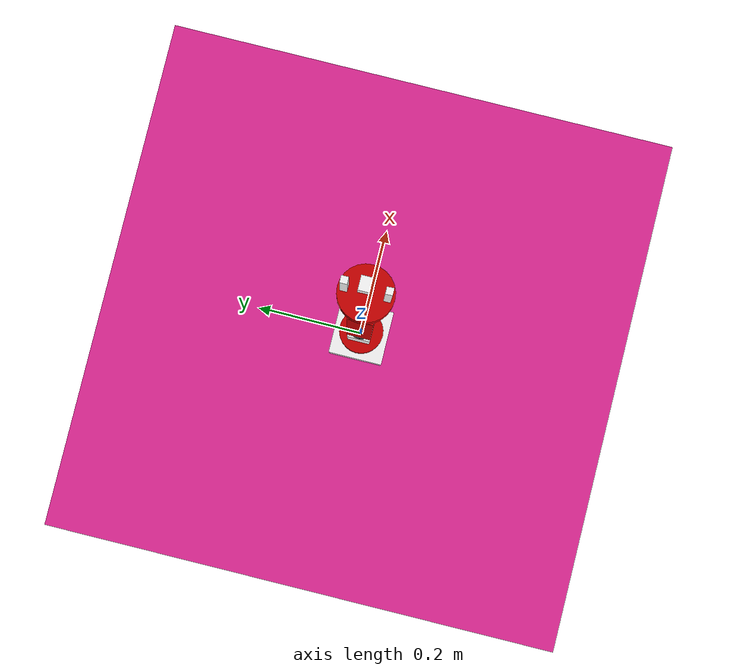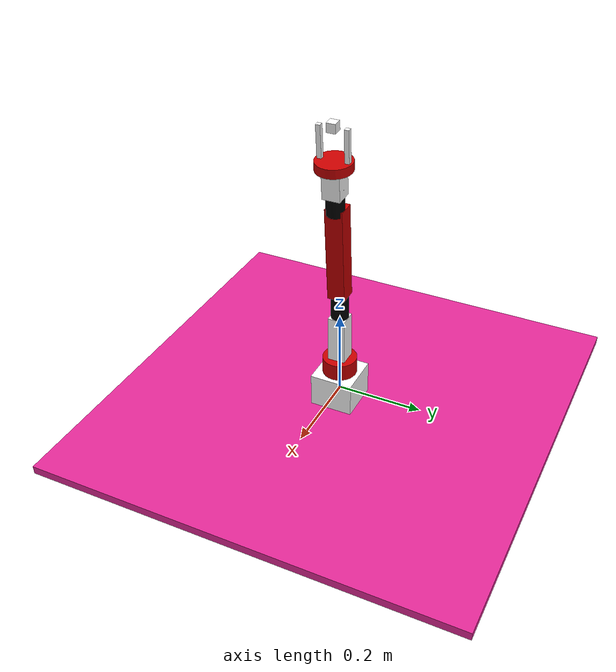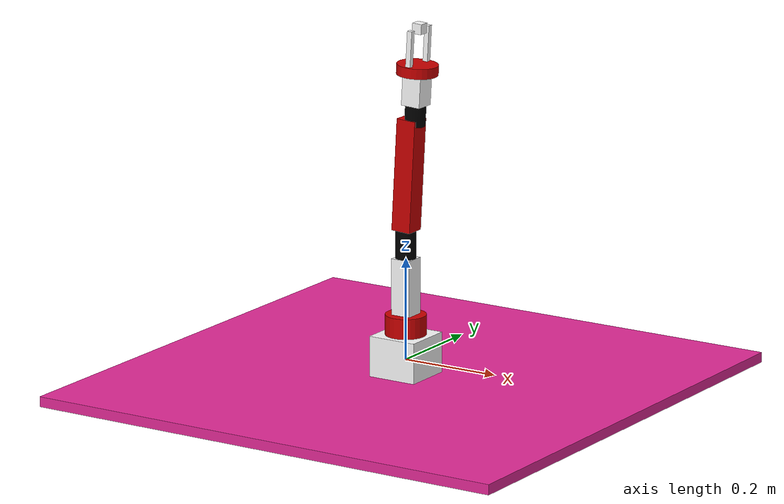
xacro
<?xml version="1.0"?>

<robot name="seven_dof_arm" xmlns:xacro="http://ros.org/wiki/xacro">

    <!-- Include materials -->

    <material name="Black">
        <color rgba="0.0 0.0 0.0 1.0" />
    </material>

    <material name="Red">
        <color rgba="0.8 0.0 0.0 1.0" />
    </material>

    <material name="White">
        <color rgba="1.0 1.0 1.0 1.0" />
    </material>

    <material name="Brown">
        <color rgba="0.9 0.16 0.6 1.0" />
    </material>

    <xacro:property name="deg_to_rad" value="0.01745329251994329577" />

    <!-- Constants -->
    <xacro:property name="M_SCALE" value="0.001 0.001 0.001" />
    <xacro:property name="M_PI" value="3.14159" />

    <!-- Shoulder pan link properties -->
    <xacro:property name="shoulder_pan_width" value="0.04" />
    <xacro:property name="shoulder_pan_len" value="0.08" />

    <!-- Shoulder pitch link properties -->
    <xacro:property name="shoulder_pitch_len" value="0.14" />
    <xacro:property name="shoulder_pitch_width" value="0.04" />
    <xacro:property name="shoulder_pitch_height" value="0.04" />

    <!-- Elbow roll link properties -->
    <xacro:property name="elbow_roll_width" value="0.02" />
    <xacro:property name="elbow_roll_len" value="0.06" />

    <!-- Elbow pitch link properties -->
    <xacro:property name="elbow_pitch_len" value="0.22" />
    <xacro:property name="elbow_pitch_width" value="0.04" />
    <xacro:property name="elbow_pitch_height" value="0.04" />

    <!-- Wrist roll link properties -->
    <xacro:property name="wrist_roll_width" value="0.02" />
    <xacro:property name="wrist_roll_len" value="0.04" />

    <!-- wrist pitch link properties -->
    <xacro:property name="wrist_pitch_len" value="0.06" />
    <xacro:property name="wrist_pitch_width" value="0.04" />
    <xacro:property name="wrist_pitch_height" value="0.04" />

    <!-- Gripper roll link properties -->
    <xacro:property name="gripper_roll_width" value="0.04" />
    <xacro:property name="gripper_roll_len" value="0.02" />

    <!-- Left gripper -->
    <xacro:property name="left_gripper_len" value="0.08" />
    <xacro:property name="left_gripper_width" value="0.01" />
    <xacro:property name="left_gripper_height" value="0.01" />

    <!-- Right gripper -->
    <xacro:property name="right_gripper_len" value="0.08" />
    <xacro:property name="right_gripper_width" value="0.01" />
    <xacro:property name="right_gripper_height" value="0.01" />

    <!-- Right gripper -->
    <xacro:property name="grasp_frame_len" value="0.02" />
    <xacro:property name="grasp_frame_width" value="0.02" />
    <xacro:property name="grasp_frame_height" value="0.02" />

    <xacro:macro name="inertial_matrix" params="mass">
        <inertial>
            <mass value="${mass}" />
            <inertia ixx="1.0" ixy="0.0" ixz="0.0" iyy="0.5" iyz="0.0" izz="1.0" />
        </inertial>
    </xacro:macro>

    <xacro:macro name="transmission_block" params="joint_name">
        <transmission name="tran1">
            <type>transmission_interface/SimpleTransmission</type>
            <joint name="${joint_name}">
                <hardwareInterface>hardware_interface/PositionJointInterface</hardwareInterface>
            </joint>
            <actuator name="motor1">
                <hardwareInterface>hardware_interface/PositionJointInterface</hardwareInterface>
                <mechanicalReduction>1</mechanicalReduction>
            </actuator>
        </transmission>
    </xacro:macro>

    <!-- BOTTOM FIXED LINK
This link is the base of the arm in which arm is placed

-->

    <joint name="bottom_joint" type="fixed">
        <origin xyz="0 0 0" rpy="0 0 0" />
        <parent link="base_link" />
        <child link="bottom_link" />
    </joint>

    <link name="bottom_link">

        <visual>
            <origin xyz=" 0 0 -0.04" rpy="0 0 0" />
            <geometry>

                <box size="1 1 0.02" />

            </geometry>
            <material name="Brown" />
        </visual>

    <collision>
            <origin xyz=" 0 0 -0.04" rpy="0 0 0" />
            <geometry>
                <box size="1 1 0.02" />
            </geometry>
        </collision>> </link>

    <gazebo reference="bottom_link">
        <material>Gazebo/White</material>
    </gazebo>

    <!-- BASE LINK -->
    <link name="base_link">

        <visual>
            <origin xyz="0 0 0" rpy="${M_PI/2} 0 0" /> <!-- rotate PI/2 -->
            <geometry>

                <box size="0.1 0.1 0.1" />

            </geometry>
            <material name="White" />
        </visual>

        <collision>
            <origin xyz="0 0 0" rpy="${M_PI/2} 0 0" /> <!-- rotate PI/2 -->
            <geometry>

                <box size="0.1 0.1 0.1" />

            </geometry>
        </collision>
    </link>

    <gazebo reference="base_link">
        <material>Gazebo/White</material>
    </gazebo>

    <joint name="shoulder_pan_joint" type="revolute">
        <parent link="base_link" />
        <child link="shoulder_pan_link" />
        <origin xyz="0 0 0.05" rpy="0 ${M_PI/2} ${M_PI*0}" />
        <axis xyz="-1 0 0" />
        <limit effort="300" velocity="1" lower="-2.61799387799" upper="1.98394848567" />
        <dynamics damping="50" friction="1" />
    </joint>

    <!-- SHOULDER PAN LINK -->
    <link name="shoulder_pan_link">

        <visual>
            <origin xyz="0 0 0" rpy="0 ${M_PI/2} 0" />
            <geometry>

                <cylinder radius="${shoulder_pan_width}" length="${shoulder_pan_len}" />

            </geometry>
            <material name="Red" />
        </visual>

        <collision>
            <origin xyz="0 0 0" rpy="0 ${M_PI/2} 0" />
            <geometry>
                <cylinder radius="${shoulder_pan_width}" length="${shoulder_pan_len}" />
            </geometry>
        </collision>
        <xacro:inertial_matrix mass="1" />
    </link>

    <gazebo reference="shoulder_pan_link">
        <material>Gazebo/Red</material>
    </gazebo>

    <joint name="shoulder_pitch_joint" type="revolute">
        <parent link="shoulder_pan_link" />
        <child link="shoulder_pitch_link" />
        <origin xyz="-0.041 0.0021 0.0" rpy="-${M_PI/2} 0 ${M_PI/2}" />
        <axis xyz="1 0 0" />
        <limit effort="300" velocity="1" lower="-1.19962513147" upper="1.89994105047" />
        <dynamics damping="50" friction="1" />
    </joint>

    <!-- SHOULDER PITCH LINK -->
    <link name="shoulder_pitch_link">

        <visual>
            <origin xyz="-0.002 0 0.04" rpy="0 ${M_PI/2} 0" />
            <geometry>

                <box size="${shoulder_pitch_len} ${shoulder_pitch_width} ${shoulder_pitch_height}" />

            </geometry>
            <material name="White" />
        </visual>

        <collision>
            <origin xyz="-0.002 0 0.04" rpy="0 ${M_PI/2} 0" />
            <geometry>
                <box size="${shoulder_pitch_len} ${shoulder_pitch_width} ${shoulder_pitch_height}" />
            </geometry>
        </collision>
        <xacro:inertial_matrix mass="1" />
    </link>

    <gazebo reference="shoulder_pitch_link">
        <material>Gazebo/White</material>
    </gazebo>

    <joint name="elbow_roll_joint" type="revolute">
        <parent link="shoulder_pitch_link" />
        <child link="elbow_roll_link" />
        <origin xyz="-0.002 0 0.1206" rpy="${M_PI} ${M_PI/2} 0" />
        <axis xyz="-1 0 0" />
        <limit effort="300" velocity="1" lower="-2.61799387799" upper="0.705631162427" />
        <dynamics damping="50" friction="1" />
    </joint>

    <!-- ELBOW ROLL LINK -->
    <link name="elbow_roll_link">

        <visual>
            <origin xyz="-0.015 0.0 -0.0" rpy="0 ${M_PI/2} 0" />
            <geometry>

                <cylinder radius="${elbow_roll_width}" length="${elbow_roll_len}" />

            </geometry>
            <material name="Black" />
        </visual>

        <collision>
            <origin xyz="-0.015 0.0 -0.0" rpy="0 ${M_PI/2} 0" />
            <geometry>
                <cylinder radius="${elbow_roll_width}" length="${elbow_roll_len}" />
            </geometry>
        </collision>
        <xacro:inertial_matrix mass="1" />
    </link>

    <gazebo reference="elbow_roll_link">
        <material>Gazebo/Black</material>
    </gazebo>

    <joint name="elbow_pitch_joint" type="revolute">
        <parent link="elbow_roll_link" />
        <child link="elbow_pitch_link" />
        <origin xyz="-0.035 0 0.0" rpy="0.055 ${M_PI/2} 0" />
        <axis xyz="1 0 0" />
        <limit effort="300" velocity="1" lower="-1.5953400194" upper="1.93281579274" />
        <dynamics damping="50" friction="1" />
    </joint>

    <!-- ELBOW PITCH LINK -->
    <link name="elbow_pitch_link">

        <visual>
            <origin xyz="0 0 -0.12" rpy="0 ${M_PI/2} 0" />
            <geometry>

                <box size="${elbow_pitch_len} ${elbow_pitch_width} ${elbow_pitch_height}" />

            </geometry>
            <material name="Red" />
        </visual>

        <collision>
            <origin xyz="0 0 -0.12" rpy="0 ${M_PI/2} 0" />
            <geometry>
                <box size="${elbow_pitch_len} ${elbow_pitch_width} ${elbow_pitch_height}" />
            </geometry>
        </collision>
        <xacro:inertial_matrix mass="1" />
    </link>

    <gazebo reference="elbow_pitch_link">
        <material>Gazebo/Red</material>
    </gazebo>

    <joint name="wrist_roll_joint" type="revolute">
        <parent link="elbow_pitch_link" />
        <child link="wrist_roll_link" />
        <origin xyz="0.0 0.0081 -.248" rpy="0 ${M_PI/2} ${M_PI}" />
        <axis xyz="1 0 0" />
        <limit effort="300" velocity="1" lower="-2.61799387799" upper="2.6128806087" />
        <dynamics damping="50" friction="1" />
    </joint>

    <!-- WRIST ROLL LINK -->
    <link name="wrist_roll_link">
        <visual>
            <origin xyz="0 0 0" rpy="0 ${M_PI/2} 0" />
            <geometry>

                <cylinder radius="${elbow_roll_width}" length="${elbow_roll_len}" />

            </geometry>
            <material name="Black" />
        </visual>

        <collision>
            <origin xyz="0 0 0" rpy="0 ${M_PI/2} 0" />
            <geometry>
                <cylinder radius="${elbow_roll_width}" length="${elbow_roll_len}" />
            </geometry>
        </collision>
        <xacro:inertial_matrix mass="1" />

    </link>

    <gazebo reference="wrist_roll_link">
        <material>Gazebo/Black</material>
    </gazebo>

    <joint name="wrist_pitch_joint" type="revolute">
        <parent link="wrist_roll_link" />
        <child link="wrist_pitch_link" />
        <origin xyz="0.0 0.0 0.0001" rpy="0 ${M_PI/2} 0" />
        <axis xyz="1 0 0" />
        <limit effort="300" velocity="1" lower="-1.5953400194" upper="1.98394848567" />
        <dynamics damping="50" friction="1" />
    </joint>

    <!-- WRIST PITCH LINK -->
    <link name="wrist_pitch_link">

        <visual>
            <origin xyz="0 0 0.04" rpy="0 ${M_PI/2} 0" />
            <geometry>

                <box size="${wrist_pitch_len} ${wrist_pitch_width} ${wrist_pitch_height}" />

            </geometry>
            <material name="White" />
        </visual>

        <collision>
            <origin xyz="0 0 0.04 " rpy="0 ${M_PI/2} 0" />
            <geometry>
                <box size="${wrist_pitch_len} ${wrist_pitch_width} ${wrist_pitch_height}" />
            </geometry>
        </collision>
        <xacro:inertial_matrix mass="1" />

    </link>

    <gazebo reference="wrist_pitch_link">
        <material>Gazebo/White</material>
    </gazebo>

    <joint name="gripper_roll_joint" type="revolute">
        <parent link="wrist_pitch_link" />
        <child link="gripper_roll_link" />
        <origin xyz="0 0 0.080" rpy="${1.5*M_PI} -${.5*M_PI} 0" />
        <axis xyz="1 0 0" />
        <limit effort="300" velocity="1" lower="-3.14" upper="3.14" />
        <dynamics damping="50" friction="1" />
    </joint>

    <!-- GRIPPER ROLL LINK -->
    <link name="gripper_roll_link">

        <visual>
            <origin xyz="0 0 0" rpy="0 ${M_PI/2} 0" />
            <geometry>

                <cylinder radius="${gripper_roll_width}" length="${gripper_roll_len}" />

            </geometry>
            <material name="Red" />
        </visual>

        <collision>
            <origin xyz="0 0 0" rpy="0 ${M_PI/2} 0" />
            <geometry>
                <cylinder radius="${gripper_roll_width}" length="${gripper_roll_len}" />
            </geometry>
        </collision>
        <xacro:inertial_matrix mass="1" />

    </link>

    <gazebo reference="gripper_roll_link">
        <material>Gazebo/Red</material>
    </gazebo>

    <joint name="finger_joint1" type="prismatic">
        <parent link="gripper_roll_link" />
        <child link="gripper_finger_link1" />
        <origin xyz="0.0 0 0" />
        <axis xyz="0 1 0" />
        <limit effort="100" lower="0" upper="0.03" velocity="1.0" />

        <safety_controller k_position="20"
            k_velocity="20"
            soft_lower_limit="${-0.15 }"
            soft_upper_limit="${ 0.0 }" />

        <dynamics damping="50" friction="1" />
    </joint>

    <!-- LEFT GRIPPER AFT LINK -->
    <link name="gripper_finger_link1">

        <visual>
            <origin xyz="0.04 -0.03 0" />
            <geometry>

                <box size="${left_gripper_len} ${left_gripper_width} ${left_gripper_height}" />

            </geometry>
            <material name="White" />
        </visual>
        <xacro:inertial_matrix mass="1" />
    </link>

    <gazebo reference="l_gripper_aft_link">
        <material>Gazebo/White</material>
    </gazebo>

    <!-- Joint between Wrist roll and finger 2 -->

    <joint name="finger_joint2" type="prismatic">
        <parent link="gripper_roll_link" />
        <child link="gripper_finger_link2" />
        <origin xyz="0.0 0 0" />
        <axis xyz="0 1 0" />
        <limit effort="1" lower="-0.03" upper="0" velocity="1.0" />

        <dynamics damping="50" friction="1" />
    </joint>

    <!-- RIGHT GRIPPER AFT LINK -->

    <link name="gripper_finger_link2">
        <visual>
            <origin xyz="0.04 0.03 0" />
            <geometry>
                <box size="${right_gripper_len} ${right_gripper_width} ${right_gripper_height}" />
            </geometry>
            <material name="White" />
        </visual>
        <xacro:inertial_matrix mass="1" />
    </link>

    <gazebo reference="r_gripper_aft_link">
        <material>Gazebo/White</material>
    </gazebo>

    <!-- Grasping frame -->
    <link name="grasping_frame">

        <inertial>
            <origin xyz="0 0 0" rpy="0 0 0" />
            <mass value="0.0001" />
            <cuboid_inertia mass="0.0001" x="0.001" y="0.001" z="0.001" />
            <inertia ixx="1.0" ixy="0.0" ixz="0.0" iyy="100.0" iyz="0.0" izz="1.0" />

        </inertial>

        <visual>
            <origin xyz="0 0 0" />
            <geometry>
                <box size="${grasp_frame_len} ${grasp_frame_width} ${grasp_frame_height}" />
            </geometry>
            <material name="White" />
        </visual>

    </link>

    <joint name="grasping_frame_joint" type="fixed">
        <parent link="gripper_roll_link" />
        <child link="grasping_frame" />
        <origin xyz="0.08 0 0" rpy="0 0 0" />
    </joint>

    <xacro:include filename="$(find robot_description)/urdf/sensors/xtion_pro_live.urdf.xacro" />

    <!-- Transmissions for ROS Control -->

    <xacro:transmission_block joint_name="shoulder_pan_joint" />
    <xacro:transmission_block joint_name="shoulder_pitch_joint" />
    <xacro:transmission_block joint_name="elbow_roll_joint" />
    <xacro:transmission_block joint_name="elbow_pitch_joint" />
    <xacro:transmission_block joint_name="wrist_roll_joint" />
    <xacro:transmission_block joint_name="wrist_pitch_joint" />
    <xacro:transmission_block joint_name="gripper_roll_joint" />
    <xacro:transmission_block joint_name="finger_joint1" />
    <xacro:transmission_block joint_name="finger_joint2" />

    <!-- ros_control plugin -->
    <gazebo>
        <plugin name="gazebo_ros_control" filename="libgazebo_ros_control.so">
            <robotNamespace>/seven_dof_arm</robotNamespace>
        </plugin>
    </gazebo>

</robot>
